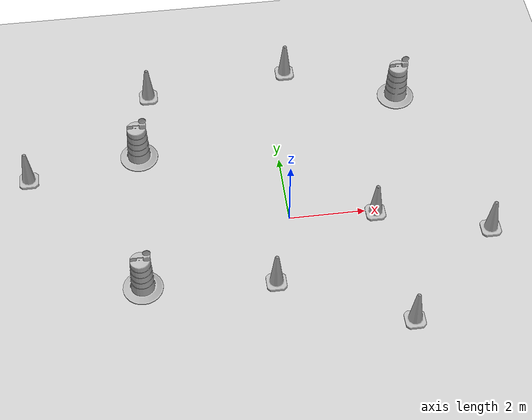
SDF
<sdf version="1.7">
 <world name="default">
  <light name="sun" type="directional">
   <pose>0 0 10 0 -0 0</pose>
   <diffuse>0.8 0.8 0.8 1</diffuse>
   <specular>0.2 0.2 0.2 1</specular>
   <attenuation>
    <range>1000</range>
    <constant>0.9</constant>
    <linear>0.01</linear>
    <quadratic>0.001</quadratic>
   </attenuation>
   <direction>-0.5 0.1 -0.9</direction>
   <spot><inner_angle>0</inner_angle><outer_angle>0</outer_angle><falloff>0</falloff></spot>
  </light>
  <model name="ground_plane">
   <static>1</static>
   <link name="link">
    <collision name="collision">
     <geometry><plane><normal>0 0 1</normal><size>100 100</size></plane></geometry>
     <surface>
      <contact><collide_bitmask>65535</collide_bitmask></contact>
      <friction><ode><mu>100</mu><mu2>50</mu2></ode></friction>
     </surface>
    </collision>
    <visual name="visual">
     <cast_shadows>0</cast_shadows>
     <geometry><plane><normal>0 0 1</normal><size>100 100</size></plane></geometry>
     <material>
      <script><uri>file://media/materials/scripts/gazebo.material</uri><name>Gazebo/Grey</name></script>
     </material>
    </visual>
   </link>
  </model>
  <gravity>0 0 -9.8</gravity>
  <magnetic_field>6e-06 2.3e-05 -4.2e-05</magnetic_field>
  <atmosphere type="adiabatic"/>
  <physics type="ode">
   <max_step_size>0.001</max_step_size>
   <real_time_factor>1</real_time_factor>
   <real_time_update_rate>1000</real_time_update_rate>
  </physics>
  <scene><ambient>0.4 0.4 0.4 1</ambient><background>0.7 0.7 0.7 1</background><shadows>1</shadows></scene>
  <audio><device>default</device></audio>
  <spherical_coordinates>
   <surface_model>EARTH_WGS84</surface_model>
   <latitude_deg>0</latitude_deg>
   <longitude_deg>0</longitude_deg>
   <elevation>0</elevation>
   <heading_deg>0</heading_deg>
  </spherical_coordinates>
  <model name="Construction Cone">
   <link name="link">
    <collision name="collision">
     <geometry>
      <mesh><scale>10 10 10</scale><uri>model://construction_cone/meshes/construction_cone.dae</uri></mesh>
     </geometry>
    </collision>
    <visual name="visual">
     <geometry>
      <mesh><scale>10 10 10</scale><uri>model://construction_cone/meshes/construction_cone.dae</uri></mesh>
     </geometry>
    </visual>
    <inertial>
     <inertia><ixx>1</ixx><ixy>0</ixy><ixz>0</ixz><iyy>1</iyy><iyz>0</iyz><izz>1</izz></inertia>
     <mass>1</mass>
    </inertial>
   </link>
   <pose>-0.608967 -1.98921 -0 0 -0 0</pose>
  </model>
  <model name="Construction Cone_0">
   <link name="link">
    <collision name="collision">
     <geometry>
      <mesh><scale>10 10 10</scale><uri>model://construction_cone/meshes/construction_cone.dae</uri></mesh>
     </geometry>
    </collision>
    <visual name="visual">
     <geometry>
      <mesh><scale>10 10 10</scale><uri>model://construction_cone/meshes/construction_cone.dae</uri></mesh>
     </geometry>
    </visual>
    <inertial>
     <inertia><ixx>1</ixx><ixy>0</ixy><ixz>0</ixz><iyy>1</iyy><iyz>0</iyz><izz>1</izz></inertia>
     <mass>1</mass>
    </inertial>
   </link>
   <pose>2.61335 -3.51715 -1e-05 -1e-06 0 0</pose>
  </model>
  <model name="Construction Cone_1">
   <link name="link">
    <collision name="collision">
     <geometry>
      <mesh><scale>10 10 10</scale><uri>model://construction_cone/meshes/construction_cone.dae</uri></mesh>
     </geometry>
    </collision>
    <visual name="visual">
     <geometry>
      <mesh><scale>10 10 10</scale><uri>model://construction_cone/meshes/construction_cone.dae</uri></mesh>
     </geometry>
    </visual>
    <inertial>
     <inertia><ixx>1</ixx><ixy>0</ixy><ixz>0</ixz><iyy>1</iyy><iyz>0</iyz><izz>1</izz></inertia>
     <mass>1</mass>
    </inertial>
   </link>
   <pose>2.26298 -0.108257 -0 0 -0 0</pose>
  </model>
  <model name="Construction Cone_2">
   <link name="link">
    <collision name="collision">
     <geometry>
      <mesh><scale>10 10 10</scale><uri>model://construction_cone/meshes/construction_cone.dae</uri></mesh>
     </geometry>
    </collision>
    <visual name="visual">
     <geometry>
      <mesh><scale>10 10 10</scale><uri>model://construction_cone/meshes/construction_cone.dae</uri></mesh>
     </geometry>
    </visual>
    <inertial>
     <inertia><ixx>1</ixx><ixy>0</ixy><ixz>0</ixz><iyy>1</iyy><iyz>0</iyz><izz>1</izz></inertia>
     <mass>1</mass>
    </inertial>
   </link>
   <pose>-3.33975 4.73548 -1e-05 -1e-06 0 0</pose>
  </model>
  <model name="Construction Cone_3">
   <link name="link">
    <collision name="collision">
     <geometry>
      <mesh><scale>10 10 10</scale><uri>model://construction_cone/meshes/construction_cone.dae</uri></mesh>
     </geometry>
    </collision>
    <visual name="visual">
     <geometry>
      <mesh><scale>10 10 10</scale><uri>model://construction_cone/meshes/construction_cone.dae</uri></mesh>
     </geometry>
    </visual>
    <inertial>
     <inertia><ixx>1</ixx><ixy>0</ixy><ixz>0</ixz><iyy>1</iyy><iyz>0</iyz><izz>1</izz></inertia>
     <mass>1</mass>
    </inertial>
   </link>
   <pose>-6.71976 2.08526 -0 0 -1e-06 0</pose>
  </model>
  <model name="Construction Cone_4">
   <link name="link">
    <collision name="collision">
     <geometry>
      <mesh><scale>10 10 10</scale><uri>model://construction_cone/meshes/construction_cone.dae</uri></mesh>
     </geometry>
    </collision>
    <visual name="visual">
     <geometry>
      <mesh><scale>10 10 10</scale><uri>model://construction_cone/meshes/construction_cone.dae</uri></mesh>
     </geometry>
    </visual>
    <inertial>
     <inertia><ixx>1</ixx><ixy>0</ixy><ixz>0</ixz><iyy>1</iyy><iyz>0</iyz><izz>1</izz></inertia>
     <mass>1</mass>
    </inertial>
   </link>
   <pose>5.13233 -0.994797 -0 0 -0 0</pose>
  </model>
  <model name="Construction Cone_5">
   <link name="link">
    <collision name="collision">
     <geometry>
      <mesh><scale>10 10 10</scale><uri>model://construction_cone/meshes/construction_cone.dae</uri></mesh>
     </geometry>
    </collision>
    <visual name="visual">
     <geometry>
      <mesh><scale>10 10 10</scale><uri>model://construction_cone/meshes/construction_cone.dae</uri></mesh>
     </geometry>
    </visual>
    <inertial>
     <inertia><ixx>1</ixx><ixy>0</ixy><ixz>0</ixz><iyy>1</iyy><iyz>0</iyz><izz>1</izz></inertia>
     <mass>1</mass>
    </inertial>
   </link>
   <pose>0.593669 5.2037 -8e-06 -6e-06 -0 -0</pose>
  </model>
  <model name="Construction Barrel">
   <link name="link">
    <inertial>
     <pose>0 0 0.4 0 -0 0</pose>
     <mass>500</mass>
     <inertia><ixx>51.2096</ixx><iyy>51.2096</iyy><izz>25</izz><ixy>0</ixy><ixz>0</ixz><iyz>0</iyz></inertia>
    </inertial>
    <collision name="collision">
     <geometry><mesh><uri>model://construction_barrel/meshes/construction_barrel.dae</uri></mesh></geometry>
    </collision>
    <visual name="visual">
     <geometry><mesh><uri>model://construction_barrel/meshes/construction_barrel.dae</uri></mesh></geometry>
    </visual>
   </link>
   <pose>-3.93603 -1.72179 -1e-06 3e-06 1e-05 -7e-06</pose>
  </model>
  <model name="Construction Barrel_0">
   <link name="link">
    <inertial>
     <pose>0 0 0.4 0 -0 0</pose>
     <mass>500</mass>
     <inertia><ixx>51.2096</ixx><iyy>51.2096</iyy><izz>25</izz><ixy>0</ixy><ixz>0</ixz><iyz>0</iyz></inertia>
    </inertial>
    <collision name="collision">
     <geometry><mesh><uri>model://construction_barrel/meshes/construction_barrel.dae</uri></mesh></geometry>
    </collision>
    <visual name="visual">
     <geometry><mesh><uri>model://construction_barrel/meshes/construction_barrel.dae</uri></mesh></geometry>
    </visual>
   </link>
   <pose>3.58726 3.95998 1e-06 2e-06 3e-06 -6e-06</pose>
  </model>
  <model name="Construction Barrel_1">
   <link name="link">
    <inertial>
     <pose>0 0 0.4 0 -0 0</pose>
     <mass>500</mass>
     <inertia><ixx>51.2096</ixx><iyy>51.2096</iyy><izz>25</izz><ixy>0</ixy><ixz>0</ixz><iyz>0</iyz></inertia>
    </inertial>
    <collision name="collision">
     <geometry><mesh><uri>model://construction_barrel/meshes/construction_barrel.dae</uri></mesh></geometry>
    </collision>
    <visual name="visual">
     <geometry><mesh><uri>model://construction_barrel/meshes/construction_barrel.dae</uri></mesh></geometry>
    </visual>
   </link>
   <pose>-3.74596 2.58024 0 0 0 -3e-06</pose>
  </model>
 </world>
</sdf>
